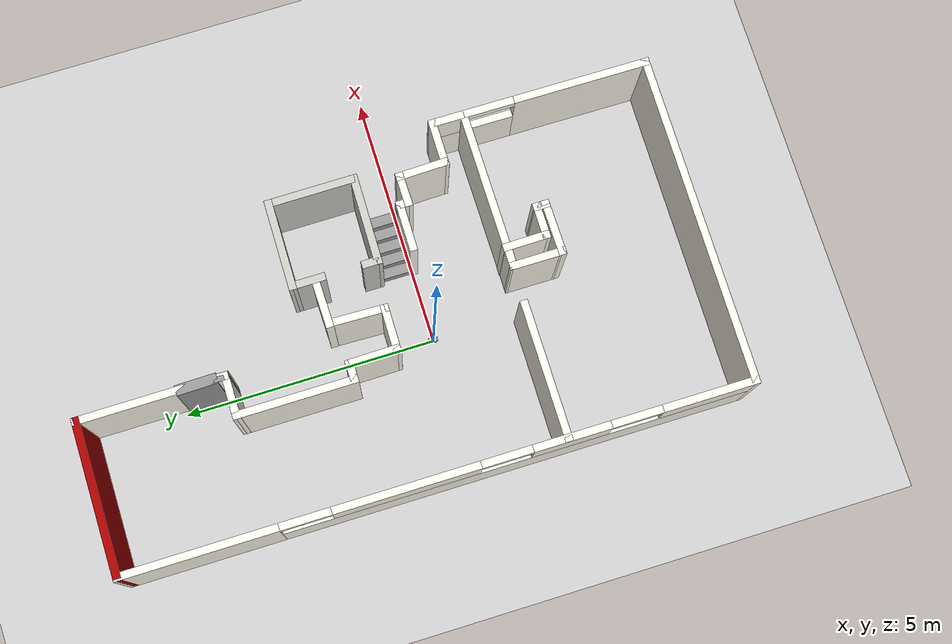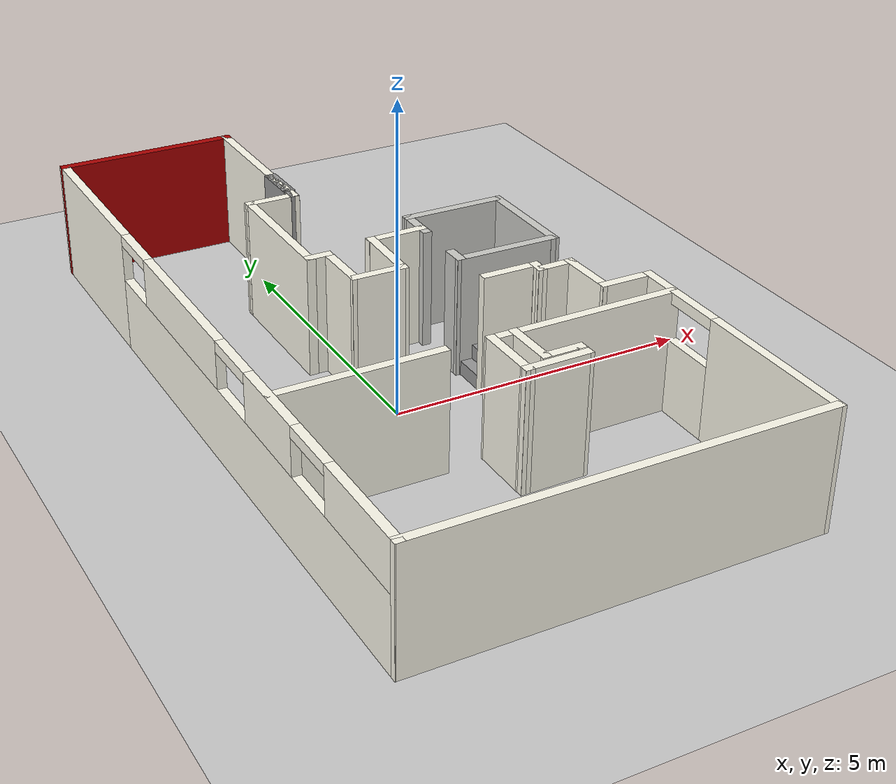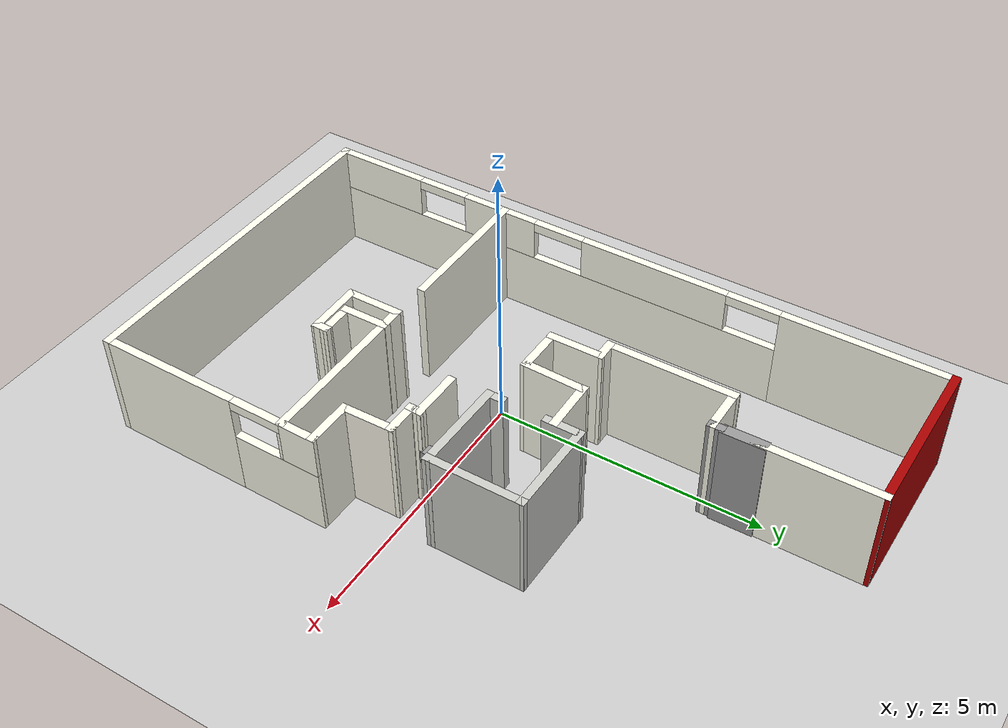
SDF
<sdf version="1.6">
 <world name="default">
  <model name="ground_plane">
   <static>1</static>
   <link name="link">
    <collision name="collision">
     <geometry><plane><normal>0 0 1</normal><size>100 100</size></plane></geometry>
     <surface>
      <contact><collide_bitmask>65535</collide_bitmask></contact>
      <friction><ode><mu>100</mu><mu2>50</mu2></ode></friction>
     </surface>
    </collision>
    <visual name="visual">
     <cast_shadows>0</cast_shadows>
     <geometry><plane><normal>0 0 1</normal><size>100 100</size></plane></geometry>
     <material>
      <script><uri>file://media/materials/scripts/gazebo.material</uri><name>Gazebo/Grey</name></script>
     </material>
    </visual>
   </link>
  </model>
  <model name="Apartment">
   <pose>0.435698 0.75844 0 0 -0 0</pose>
   <link name="Door_0">
    <collision name="Door_0_Collision">
     <geometry><box><size>0.792 0.2 2</size></box></geometry>
     <pose>0 0 1 0 -0 0</pose>
    </collision>
    <visual name="Door_0_Visual">
     <pose>0 0 1 0 -0 0</pose>
     <geometry><box><size>0.792 0.2 2</size></box></geometry>
     <material>
      <script><uri>file://media/materials/scripts/gazebo.material</uri><name>Gazebo/Grey</name></script>
     </material>
    </visual>
    <pose>-0.272982 3.76942 0 0 -0 1.58229</pose>
   </link>
   <link name="Stairs_1">
    <visual name="Stairs_1_Visual_0">
     <pose>1.08577 -0.451347 0.12 0 -0 1.5708</pose>
     <geometry><box><size>0.6 0.2 0.24</size></box></geometry>
     <material>
      <script><uri>file://media/materials/scripts/gazebo.material</uri><name>Gazebo/Grey</name></script>
      <ambient>1 1 1 1</ambient>
     </material>
     <meta><layer>0</layer></meta>
    </visual>
    <collision name="Stairs_1_Collision_0">
     <geometry><box><size>0.6 0.2 0.24</size></box></geometry>
     <pose>1.08577 -0.451347 0.12 0 -0 1.5708</pose>
    </collision>
    <visual name="Stairs_1_Visual_1">
     <pose>1.28577 -0.451347 0.36 0 -0 1.5708</pose>
     <geometry><box><size>0.6 0.2 0.24</size></box></geometry>
     <material>
      <script><uri>file://media/materials/scripts/gazebo.material</uri><name>Gazebo/Grey</name></script>
      <ambient>1 1 1 1</ambient>
     </material>
     <meta><layer>0</layer></meta>
    </visual>
    <collision name="Stairs_1_Collision_1">
     <geometry><box><size>0.6 0.2 0.24</size></box></geometry>
     <pose>1.28577 -0.451347 0.36 0 -0 1.5708</pose>
    </collision>
    <visual name="Stairs_1_Visual_2">
     <pose>1.48577 -0.451347 0.6 0 -0 1.5708</pose>
     <geometry><box><size>0.6 0.2 0.24</size></box></geometry>
     <material>
      <script><uri>file://media/materials/scripts/gazebo.material</uri><name>Gazebo/Grey</name></script>
      <ambient>1 1 1 1</ambient>
     </material>
     <meta><layer>0</layer></meta>
    </visual>
    <collision name="Stairs_1_Collision_2">
     <geometry><box><size>0.6 0.2 0.24</size></box></geometry>
     <pose>1.48577 -0.451347 0.6 0 -0 1.5708</pose>
    </collision>
    <visual name="Stairs_1_Visual_3">
     <pose>1.68577 -0.451347 0.84 0 -0 1.5708</pose>
     <geometry><box><size>0.6 0.2 0.24</size></box></geometry>
     <material>
      <script><uri>file://media/materials/scripts/gazebo.material</uri><name>Gazebo/Grey</name></script>
      <ambient>1 1 1 1</ambient>
     </material>
     <meta><layer>0</layer></meta>
    </visual>
    <collision name="Stairs_1_Collision_3">
     <geometry><box><size>0.6 0.2 0.24</size></box></geometry>
     <pose>1.68577 -0.451347 0.84 0 -0 1.5708</pose>
    </collision>
    <visual name="Stairs_1_Visual_4">
     <pose>1.88577 -0.451347 1.08 0 -0 1.5708</pose>
     <geometry><box><size>0.6 0.2 0.24</size></box></geometry>
     <material>
      <script><uri>file://media/materials/scripts/gazebo.material</uri><name>Gazebo/Grey</name></script>
      <ambient>1 1 1 1</ambient>
     </material>
     <meta><layer>0</layer></meta>
    </visual>
    <collision name="Stairs_1_Collision_4">
     <geometry><box><size>0.6 0.2 0.24</size></box></geometry>
     <pose>1.88577 -0.451347 1.08 0 -0 1.5708</pose>
    </collision>
   </link>
   <link name="Wall_0">
    <collision name="Wall_0_Collision">
     <geometry><box><size>2.97893 0.15 2</size></box></geometry>
     <pose>0 0 1 0 -0 0</pose>
    </collision>
    <visual name="Wall_0_Visual">
     <pose>0 0 1 0 -0 0</pose>
     <geometry><box><size>2.97893 0.15 2</size></box></geometry>
     <material>
      <script><uri>file://media/materials/scripts/gazebo.material</uri><name>Gazebo/Grey</name></script>
      <ambient>1 0.988235 0.929412 1</ambient>
     </material>
     <meta><layer>0</layer></meta>
    </visual>
    <pose>-0.276026 4.64956 0 0 -0 1.57256</pose>
   </link>
   <link name="Wall_1">
    <collision name="Wall_1_Collision">
     <geometry><box><size>3.08816 0.15 2</size></box></geometry>
     <pose>0 0 1 0 -0 0</pose>
    </collision>
    <visual name="Wall_1_Visual">
     <pose>0 0 1 0 -0 0</pose>
     <geometry><box><size>3.08816 0.15 2</size></box></geometry>
     <material>
      <script><uri>file://media/materials/scripts/gazebo.material</uri><name>Gazebo/Grey</name></script>
      <ambient>0.666667 0 0 1</ambient>
     </material>
     <meta><layer>0</layer></meta>
    </visual>
    <pose>-1.74753 6.07156 0 0 -0 3.13649</pose>
   </link>
   <link name="Wall_10">
    <collision name="Wall_10_Collision">
     <geometry><box><size>0.311078 0.15 2</size></box></geometry>
     <pose>0 0 1 0 -0 0</pose>
    </collision>
    <visual name="Wall_10_Visual">
     <pose>0 0 1 0 -0 0</pose>
     <geometry><box><size>0.311078 0.15 2</size></box></geometry>
     <material>
      <script><uri>file://media/materials/scripts/gazebo.material</uri><name>Gazebo/Grey</name></script>
      <ambient>1 0.988235 0.929412 1</ambient>
     </material>
     <meta><layer>0</layer></meta>
    </visual>
    <pose>1.87997 -0.868444 0 0 -0 1.53975</pose>
   </link>
   <link name="Wall_11">
    <collision name="Wall_11_Collision">
     <geometry><box><size>1 0.15 2</size></box></geometry>
     <pose>0 0 1 0 -0 0</pose>
    </collision>
    <visual name="Wall_11_Visual">
     <pose>0 0 1 0 -0 0</pose>
     <geometry><box><size>1 0.15 2</size></box></geometry>
     <material>
      <script><uri>file://media/materials/scripts/gazebo.material</uri><name>Gazebo/Grey</name></script>
      <ambient>1 0.988235 0.929412 1</ambient>
     </material>
     <meta><layer>0</layer></meta>
    </visual>
    <pose>1.45747 -0.784944 0 0 -0 3.13453</pose>
   </link>
   <link name="Wall_13">
    <collision name="Wall_13_Collision">
     <geometry><box><size>2.75 0.15 2</size></box></geometry>
     <pose>0 0 1 0 -0 0</pose>
    </collision>
    <visual name="Wall_13_Visual">
     <pose>0 0 1 0 -0 0</pose>
     <geometry><box><size>2.75 0.15 2</size></box></geometry>
     <material>
      <script><uri>file://media/materials/scripts/gazebo.material</uri><name>Gazebo/Grey</name></script>
      <ambient>1 0.988235 0.929412 1</ambient>
     </material>
     <meta><layer>0</layer></meta>
    </visual>
    <pose>-1.91153 -2.44094 0 0 -0 0</pose>
   </link>
   <link name="Wall_15">
    <collision name="Wall_15_Collision">
     <geometry><box><size>3.21378 0.15 2</size></box></geometry>
     <pose>0 0 1 0 -0 0</pose>
    </collision>
    <visual name="Wall_15_Visual">
     <pose>0 0 1 0 -0 0</pose>
     <geometry><box><size>3.21378 0.15 2</size></box></geometry>
     <material>
      <script><uri>file://media/materials/scripts/gazebo.material</uri><name>Gazebo/Grey</name></script>
      <ambient>1 0.988235 0.929412 1</ambient>
     </material>
     <meta><layer>0</layer></meta>
    </visual>
    <pose>1.67147 -2.45744 0 0 0 -3.138</pose>
   </link>
   <link name="Wall_16">
    <collision name="Wall_16_Collision">
     <geometry><box><size>1.1 0.15 2</size></box></geometry>
     <pose>0 0 1 0 -0 0</pose>
    </collision>
    <visual name="Wall_16_Visual">
     <pose>0 0 1 0 -0 0</pose>
     <geometry><box><size>1.1 0.15 2</size></box></geometry>
     <material>
      <script><uri>file://media/materials/scripts/gazebo.material</uri><name>Gazebo/Grey</name></script>
      <ambient>1 0.988235 0.929412 1</ambient>
     </material>
     <meta><layer>0</layer></meta>
    </visual>
    <pose>0.139474 -2.93794 0 0 0 -1.5708</pose>
   </link>
   <link name="Wall_17">
    <collision name="Wall_17_Collision">
     <geometry><box><size>1.1012 0.15 2</size></box></geometry>
     <pose>0 0 1 0 -0 0</pose>
    </collision>
    <visual name="Wall_17_Visual">
     <pose>0 0 1 0 -0 0</pose>
     <geometry><box><size>1.1012 0.15 2</size></box></geometry>
     <material>
      <script><uri>file://media/materials/scripts/gazebo.material</uri><name>Gazebo/Grey</name></script>
      <ambient>1 0.988235 0.929412 1</ambient>
     </material>
     <meta><layer>0</layer></meta>
    </visual>
    <pose>0.615474 -3.40644 0 0 -0 0.013655</pose>
   </link>
   <link name="Wall_18">
    <collision name="Wall_18_Collision">
     <geometry><box><size>0.32365 0.15 2</size></box></geometry>
     <pose>0 0 1 0 -0 0</pose>
    </collision>
    <visual name="Wall_18_Visual">
     <pose>0 0 1 0 -0 0</pose>
     <geometry><box><size>0.32365 0.15 2</size></box></geometry>
     <material>
      <script><uri>file://media/materials/scripts/gazebo.material</uri><name>Gazebo/Grey</name></script>
      <ambient>1 0.988235 0.929412 1</ambient>
     </material>
     <meta><layer>0</layer></meta>
    </visual>
    <pose>1.09147 -3.31294 0 0 -0 1.5708</pose>
   </link>
   <link name="Wall_19">
    <collision name="Wall_19_Collision">
     <geometry><box><size>0.719 0.15 2</size></box></geometry>
     <pose>0 0 1 0 -0 0</pose>
    </collision>
    <visual name="Wall_19_Visual">
     <pose>0 0 1 0 -0 0</pose>
     <geometry><box><size>0.719 0.15 2</size></box></geometry>
     <material>
      <script><uri>file://media/materials/scripts/gazebo.material</uri><name>Gazebo/Grey</name></script>
      <ambient>1 0.988235 0.929412 1</ambient>
     </material>
     <meta><layer>0</layer></meta>
    </visual>
    <pose>0.806974 -3.22744 0 0 0 -3.13632</pose>
   </link>
   <link name="Wall_2">
    <pose>-3.21653 0.012056 0 0 0 -1.5708</pose>
    <visual name="Wall_2_Visual_0">
     <pose>-4.59104 0 1 0 -0 0</pose>
     <geometry><box><size>3.10147 0.15 2</size></box></geometry>
     <material>
      <script><uri>file://media/materials/scripts/gazebo.material</uri><name>Gazebo/Grey</name></script>
      <ambient>1 0.988235 0.929412 1</ambient>
     </material>
     <meta><layer>0</layer></meta>
    </visual>
    <collision name="Wall_2_Collision_0">
     <geometry><box><size>3.10147 0.15 2</size></box></geometry>
     <pose>-4.59104 0 1 0 -0 0</pose>
    </collision>
    <visual name="Wall_2_Visual_1">
     <pose>1.55073 0 0.6095 0 -0 0</pose>
     <geometry><box><size>9.18207 0.15 1.219</size></box></geometry>
     <material>
      <script><uri>file://media/materials/scripts/gazebo.material</uri><name>Gazebo/Grey</name></script>
      <ambient>1 0.988235 0.929412 1</ambient>
     </material>
     <meta><layer>0</layer></meta>
    </visual>
    <collision name="Wall_2_Collision_1">
     <geometry><box><size>9.18207 0.15 1.219</size></box></geometry>
     <pose>1.55073 0 0.6095 0 -0 0</pose>
    </collision>
    <visual name="Wall_2_Visual_2">
     <pose>-0.630934 0 1.6095 0 -0 0</pose>
     <geometry><box><size>2.83873 0.15 0.781</size></box></geometry>
     <material>
      <script><uri>file://media/materials/scripts/gazebo.material</uri><name>Gazebo/Grey</name></script>
      <ambient>1 0.988235 0.929412 1</ambient>
     </material>
     <meta><layer>0</layer></meta>
    </visual>
    <collision name="Wall_2_Collision_2">
     <geometry><box><size>2.83873 0.15 0.781</size></box></geometry>
     <pose>-0.630934 0 1.6095 0 -0 0</pose>
    </collision>
    <visual name="Wall_2_Visual_3">
     <pose>2.53117 0 1.6095 0 -0 0</pose>
     <geometry><box><size>1.50548 0.15 0.781</size></box></geometry>
     <material>
      <script><uri>file://media/materials/scripts/gazebo.material</uri><name>Gazebo/Grey</name></script>
      <ambient>1 0.988235 0.929412 1</ambient>
     </material>
     <meta><layer>0</layer></meta>
    </visual>
    <collision name="Wall_2_Collision_3">
     <geometry><box><size>1.50548 0.15 0.781</size></box></geometry>
     <pose>2.53117 0 1.6095 0 -0 0</pose>
    </collision>
    <visual name="Wall_2_Visual_4">
     <pose>5.20784 0 1.6095 0 -0 0</pose>
     <geometry><box><size>1.86786 0.15 0.781</size></box></geometry>
     <material>
      <script><uri>file://media/materials/scripts/gazebo.material</uri><name>Gazebo/Grey</name></script>
      <ambient>1 0.988235 0.929412 1</ambient>
     </material>
     <meta><layer>0</layer></meta>
    </visual>
    <collision name="Wall_2_Collision_4">
     <geometry><box><size>1.86786 0.15 0.781</size></box></geometry>
     <pose>5.20784 0 1.6095 0 -0 0</pose>
    </collision>
    <visual name="Wall_2_Visual_5">
     <pose>-2.5453 0 1.9095 0 -0 0</pose>
     <geometry><box><size>0.99 0.15 0.181</size></box></geometry>
     <material>
      <script><uri>file://media/materials/scripts/gazebo.material</uri><name>Gazebo/Grey</name></script>
      <ambient>1 0.988235 0.929412 1</ambient>
     </material>
     <meta><layer>0</layer></meta>
    </visual>
    <collision name="Wall_2_Collision_5">
     <geometry><box><size>0.99 0.15 0.181</size></box></geometry>
     <pose>-2.5453 0 1.9095 0 -0 0</pose>
    </collision>
    <visual name="Wall_2_Visual_6">
     <pose>1.28343 0 1.9095 0 -0 0</pose>
     <geometry><box><size>0.99 0.15 0.181</size></box></geometry>
     <material>
      <script><uri>file://media/materials/scripts/gazebo.material</uri><name>Gazebo/Grey</name></script>
      <ambient>1 0.988235 0.929412 1</ambient>
     </material>
     <meta><layer>0</layer></meta>
    </visual>
    <collision name="Wall_2_Collision_6">
     <geometry><box><size>0.99 0.15 0.181</size></box></geometry>
     <pose>1.28343 0 1.9095 0 -0 0</pose>
    </collision>
    <visual name="Wall_2_Visual_7">
     <pose>3.77891 0 1.9095 0 -0 0</pose>
     <geometry><box><size>0.99 0.15 0.181</size></box></geometry>
     <material>
      <script><uri>file://media/materials/scripts/gazebo.material</uri><name>Gazebo/Grey</name></script>
      <ambient>1 0.988235 0.929412 1</ambient>
     </material>
     <meta><layer>0</layer></meta>
    </visual>
    <collision name="Wall_2_Collision_7">
     <geometry><box><size>0.99 0.15 0.181</size></box></geometry>
     <pose>3.77891 0 1.9095 0 -0 0</pose>
    </collision>
   </link>
   <link name="Wall_20">
    <collision name="Wall_20_Collision">
     <geometry><box><size>0.925382 0.15 2</size></box></geometry>
     <pose>0 0 1 0 -0 0</pose>
    </collision>
    <visual name="Wall_20_Visual">
     <pose>0 0 1 0 -0 0</pose>
     <geometry><box><size>0.925382 0.15 2</size></box></geometry>
     <material>
      <script><uri>file://media/materials/scripts/gazebo.material</uri><name>Gazebo/Grey</name></script>
      <ambient>1 0.988235 0.929412 1</ambient>
     </material>
     <meta><layer>0</layer></meta>
    </visual>
    <pose>0.519474 -2.84094 0 0 -0 1.57853</pose>
   </link>
   <link name="Wall_23">
    <collision name="Wall_23_Collision">
     <geometry><box><size>1.79124 0.15 2</size></box></geometry>
     <pose>0 0 1 0 -0 0</pose>
    </collision>
    <visual name="Wall_23_Visual">
     <pose>0 0 1 0 -0 0</pose>
     <geometry><box><size>1.79124 0.15 2</size></box></geometry>
     <material>
      <script><uri>file://media/materials/scripts/gazebo.material</uri><name>Gazebo/CeilingTiled</name></script>
      <ambient>1 1 1 1</ambient>
     </material>
     <meta><layer>0</layer></meta>
    </visual>
    <pose>1.79897 -0.097944 0 0 0 -0.015843</pose>
   </link>
   <link name="Wall_24">
    <collision name="Wall_24_Collision">
     <geometry><box><size>1.8195 0.15 2</size></box></geometry>
     <pose>0 0 1 0 -0 0</pose>
    </collision>
    <visual name="Wall_24_Visual">
     <pose>0 0 1 0 -0 0</pose>
     <geometry><box><size>1.8195 0.15 2</size></box></geometry>
     <material>
      <script><uri>file://media/materials/scripts/gazebo.material</uri><name>Gazebo/CeilingTiled</name></script>
      <ambient>1 1 1 1</ambient>
     </material>
     <meta><layer>0</layer></meta>
    </visual>
    <pose>2.61947 0.723556 0 0 -0 1.5708</pose>
   </link>
   <link name="Wall_25">
    <collision name="Wall_25_Collision">
     <geometry><box><size>1.79103 0.15 2</size></box></geometry>
     <pose>0 0 1 0 -0 0</pose>
    </collision>
    <visual name="Wall_25_Visual">
     <pose>0 0 1 0 -0 0</pose>
     <geometry><box><size>1.79103 0.15 2</size></box></geometry>
     <material>
      <script><uri>file://media/materials/scripts/gazebo.material</uri><name>Gazebo/CeilingTiled</name></script>
      <ambient>1 1 1 1</ambient>
     </material>
     <meta><layer>0</layer></meta>
    </visual>
    <pose>1.79897 1.56706 0 0 -0 3.13062</pose>
   </link>
   <link name="Wall_28">
    <collision name="Wall_28_Collision">
     <geometry><box><size>1.02916 0.15 2</size></box></geometry>
     <pose>0 0 1 0 -0 0</pose>
    </collision>
    <visual name="Wall_28_Visual">
     <pose>0 0 1 0 -0 0</pose>
     <geometry><box><size>1.02916 0.15 2</size></box></geometry>
     <material>
      <script><uri>file://media/materials/scripts/gazebo.material</uri><name>Gazebo/Grey</name></script>
      <ambient>1 0.988235 0.929412 1</ambient>
     </material>
     <meta><layer>0</layer></meta>
    </visual>
    <pose>0.535929 1.12956 0 0 0 -3.12908</pose>
   </link>
   <link name="Wall_30">
    <collision name="Wall_30_Collision">
     <geometry><box><size>1.21772 0.15 2</size></box></geometry>
     <pose>0 0 1 0 -0 0</pose>
    </collision>
    <visual name="Wall_30_Visual">
     <pose>0 0 1 0 -0 0</pose>
     <geometry><box><size>1.21772 0.15 2</size></box></geometry>
     <material>
      <script><uri>file://media/materials/scripts/gazebo.material</uri><name>Gazebo/Grey</name></script>
      <ambient>1 0.988235 0.929412 1</ambient>
     </material>
     <meta><layer>0</layer></meta>
    </visual>
    <pose>0.089183 0.590208 0 0 0 -1.5979</pose>
   </link>
   <link name="Wall_31">
    <collision name="Wall_31_Collision">
     <geometry><box><size>0.941296 0.15 2</size></box></geometry>
     <pose>0 0 1 0 -0 0</pose>
    </collision>
    <visual name="Wall_31_Visual">
     <pose>0 0 1 0 -0 0</pose>
     <geometry><box><size>0.941296 0.15 2</size></box></geometry>
     <material>
      <script><uri>file://media/materials/scripts/gazebo.material</uri><name>Gazebo/Grey</name></script>
      <ambient>1 0.988235 0.929412 1</ambient>
     </material>
     <meta><layer>0</layer></meta>
    </visual>
    <pose>-0.320908 0.061208 0 0 -0 3.12934</pose>
   </link>
   <link name="Wall_32">
    <collision name="Wall_32_Collision">
     <geometry><box><size>1.06103 0.15 2</size></box></geometry>
     <pose>0 0 1 0 -0 0</pose>
    </collision>
    <visual name="Wall_32_Visual">
     <pose>0 0 1 0 -0 0</pose>
     <geometry><box><size>1.06103 0.15 2</size></box></geometry>
     <material>
      <script><uri>file://media/materials/scripts/gazebo.material</uri><name>Gazebo/Grey</name></script>
      <ambient>1 0.988235 0.929412 1</ambient>
     </material>
     <meta><layer>0</layer></meta>
    </visual>
    <pose>-0.721026 0.521556 0 0 -0 1.58068</pose>
   </link>
   <link name="Wall_33">
    <collision name="Wall_33_Collision">
     <geometry><box><size>0.45987 0.15 2</size></box></geometry>
     <pose>0 0 1 0 -0 0</pose>
    </collision>
    <visual name="Wall_33_Visual">
     <pose>0 0 1 0 -0 0</pose>
     <geometry><box><size>0.45987 0.15 2</size></box></geometry>
     <material>
      <script><uri>file://media/materials/scripts/gazebo.material</uri><name>Gazebo/Grey</name></script>
      <ambient>1 0.988235 0.929412 1</ambient>
     </material>
     <meta><layer>0</layer></meta>
    </visual>
    <pose>-0.880526 0.977056 0 0 -0 3.14159</pose>
   </link>
   <link name="Wall_35">
    <collision name="Wall_35_Collision">
     <geometry><box><size>2.40185 0.15 2</size></box></geometry>
     <pose>0 0 1 0 -0 0</pose>
    </collision>
    <visual name="Wall_35_Visual">
     <pose>0 0 1 0 -0 0</pose>
     <geometry><box><size>2.40185 0.15 2</size></box></geometry>
     <material>
      <script><uri>file://media/materials/scripts/gazebo.material</uri><name>Gazebo/Grey</name></script>
      <ambient>1 0.988235 0.929412 1</ambient>
     </material>
     <meta><layer>0</layer></meta>
    </visual>
    <pose>-1.03553 2.10256 0 0 -0 1.5708</pose>
   </link>
   <link name="Wall_36">
    <collision name="Wall_36_Collision">
     <geometry><box><size>0.915215 0.15 2</size></box></geometry>
     <pose>0 0 1 0 -0 0</pose>
    </collision>
    <visual name="Wall_36_Visual">
     <pose>0 0 1 0 -0 0</pose>
     <geometry><box><size>0.915215 0.15 2</size></box></geometry>
     <material>
      <script><uri>file://media/materials/scripts/gazebo.material</uri><name>Gazebo/Grey</name></script>
      <ambient>1 0.988235 0.929412 1</ambient>
     </material>
     <meta><layer>0</layer></meta>
    </visual>
    <pose>-0.653026 3.22506 0 0 0 -0.007843</pose>
   </link>
   <link name="Wall_37">
    <collision name="Wall_37_Collision">
     <geometry><box><size>0.301905 0.15 2</size></box></geometry>
     <pose>0 0 1 0 -0 0</pose>
    </collision>
    <visual name="Wall_37_Visual">
     <pose>0 0 1 0 -0 0</pose>
     <geometry><box><size>0.301905 0.15 2</size></box></geometry>
     <material>
      <script><uri>file://media/materials/scripts/gazebo.material</uri><name>Gazebo/Grey</name></script>
      <ambient>1 1 1 1</ambient>
     </material>
     <meta><layer>0</layer></meta>
    </visual>
    <pose>-0.270526 3.29806 0 0 -0 1.5708</pose>
   </link>
   <link name="Wall_4">
    <collision name="Wall_4_Collision">
     <geometry><box><size>6.55531 0.15 2</size></box></geometry>
     <pose>0 0 1 0 -0 0</pose>
    </collision>
    <visual name="Wall_4_Visual">
     <pose>0 0 1 0 -0 0</pose>
     <geometry><box><size>6.55531 0.15 2</size></box></geometry>
     <material>
      <script><uri>file://media/materials/scripts/gazebo.material</uri><name>Gazebo/Grey</name></script>
      <ambient>1 0.988235 0.929412 1</ambient>
     </material>
     <meta><layer>0</layer></meta>
    </visual>
    <pose>-0.014026 -6.06694 0 0 0 -0.003747</pose>
   </link>
   <link name="Wall_42">
    <pose>0.978474 0.745556 0 0 0 -1.5708</pose>
    <visual name="Wall_42_Visual_0">
     <pose>-0.544709 0 1 0 -0 0</pose>
     <geometry><box><size>0.721287 0.15 2</size></box></geometry>
     <material>
      <script><uri>file://media/materials/scripts/gazebo.material</uri><name>Gazebo/CeilingTiled</name></script>
      <ambient>1 1 1 1</ambient>
     </material>
     <meta><layer>0</layer></meta>
    </visual>
    <collision name="Wall_42_Collision_0">
     <geometry><box><size>0.721287 0.15 2</size></box></geometry>
     <pose>-0.544709 0 1 0 -0 0</pose>
    </collision>
    <visual name="Wall_42_Visual_1">
     <pose>0.710643 0 1 0 -0 0</pose>
     <geometry><box><size>0.389419 0.15 2</size></box></geometry>
     <material>
      <script><uri>file://media/materials/scripts/gazebo.material</uri><name>Gazebo/CeilingTiled</name></script>
      <ambient>1 1 1 1</ambient>
     </material>
     <meta><layer>0</layer></meta>
    </visual>
    <collision name="Wall_42_Collision_1">
     <geometry><box><size>0.389419 0.15 2</size></box></geometry>
     <pose>0.710643 0 1 0 -0 0</pose>
    </collision>
   </link>
   <link name="Wall_5">
    <pose>3.20247 -3.96044 0 0 -0 1.56419</pose>
    <visual name="Wall_5_Visual_0">
     <pose>-0.841786 0 1 0 -0 0</pose>
     <geometry><box><size>2.70352 0.15 2</size></box></geometry>
     <material>
      <script><uri>file://media/materials/scripts/gazebo.material</uri><name>Gazebo/Grey</name></script>
      <ambient>1 0.988235 0.929412 1</ambient>
     </material>
     <meta><layer>0</layer></meta>
    </visual>
    <collision name="Wall_5_Collision_0">
     <geometry><box><size>2.70352 0.15 2</size></box></geometry>
     <pose>-0.841786 0 1 0 -0 0</pose>
    </collision>
    <visual name="Wall_5_Visual_1">
     <pose>1.35176 0 0.6095 0 -0 0</pose>
     <geometry><box><size>1.68357 0.15 1.219</size></box></geometry>
     <material>
      <script><uri>file://media/materials/scripts/gazebo.material</uri><name>Gazebo/Grey</name></script>
      <ambient>1 0.988235 0.929412 1</ambient>
     </material>
     <meta><layer>0</layer></meta>
    </visual>
    <collision name="Wall_5_Collision_1">
     <geometry><box><size>1.68357 0.15 1.219</size></box></geometry>
     <pose>1.35176 0 0.6095 0 -0 0</pose>
    </collision>
    <visual name="Wall_5_Visual_2">
     <pose>1.84676 0 1.6095 0 -0 0</pose>
     <geometry><box><size>0.693573 0.15 0.781</size></box></geometry>
     <material>
      <script><uri>file://media/materials/scripts/gazebo.material</uri><name>Gazebo/Grey</name></script>
      <ambient>1 0.988235 0.929412 1</ambient>
     </material>
     <meta><layer>0</layer></meta>
    </visual>
    <collision name="Wall_5_Collision_2">
     <geometry><box><size>0.693573 0.15 0.781</size></box></geometry>
     <pose>1.84676 0 1.6095 0 -0 0</pose>
    </collision>
    <visual name="Wall_5_Visual_3">
     <pose>1.00497 0 1.9095 0 -0 0</pose>
     <geometry><box><size>0.99 0.15 0.181</size></box></geometry>
     <material>
      <script><uri>file://media/materials/scripts/gazebo.material</uri><name>Gazebo/Grey</name></script>
      <ambient>1 0.988235 0.929412 1</ambient>
     </material>
     <meta><layer>0</layer></meta>
    </visual>
    <collision name="Wall_5_Collision_3">
     <geometry><box><size>0.99 0.15 0.181</size></box></geometry>
     <pose>1.00497 0 1.9095 0 -0 0</pose>
    </collision>
   </link>
   <link name="Wall_7">
    <collision name="Wall_7_Collision">
     <geometry><box><size>0.940612 0.15 2</size></box></geometry>
     <pose>0 0 1 0 -0 0</pose>
    </collision>
    <visual name="Wall_7_Visual">
     <pose>0 0 1 0 -0 0</pose>
     <geometry><box><size>0.940612 0.15 2</size></box></geometry>
     <material>
      <script><uri>file://media/materials/scripts/gazebo.material</uri><name>Gazebo/Grey</name></script>
      <ambient>1 0.988235 0.929412 1</ambient>
     </material>
     <meta><layer>0</layer></meta>
    </visual>
    <pose>2.82097 -1.83894 0 0 -0 3.13401</pose>
   </link>
   <link name="Wall_8">
    <collision name="Wall_8_Collision">
     <geometry><box><size>1.04134 0.15 2</size></box></geometry>
     <pose>0 0 1 0 -0 0</pose>
    </collision>
    <visual name="Wall_8_Visual">
     <pose>0 0 1 0 -0 0</pose>
     <geometry><box><size>1.04134 0.15 2</size></box></geometry>
     <material>
      <script><uri>file://media/materials/scripts/gazebo.material</uri><name>Gazebo/Grey</name></script>
      <ambient>1 0.988235 0.929412 1</ambient>
     </material>
     <meta><layer>0</layer></meta>
    </visual>
    <pose>2.41547 -1.39044 0 0 -0 1.59324</pose>
   </link>
   <link name="Wall_9">
    <collision name="Wall_9_Collision">
     <geometry><box><size>0.678216 0.15 2</size></box></geometry>
     <pose>0 0 1 0 -0 0</pose>
    </collision>
    <visual name="Wall_9_Visual">
     <pose>0 0 1 0 -0 0</pose>
     <geometry><box><size>0.678216 0.15 2</size></box></geometry>
     <material>
      <script><uri>file://media/materials/scripts/gazebo.material</uri><name>Gazebo/Grey</name></script>
      <ambient>1 0.988235 0.929412 1</ambient>
     </material>
     <meta><layer>0</layer></meta>
    </visual>
    <pose>2.14147 -0.946944 0 0 0 -3.13402</pose>
   </link>
   <static>1</static>
  </model>
  <model name="Scout">
   <link name="link_5">
    <pose>0.000124 0.000467 0.012036 0 1.5707 0</pose>
    <inertial>
     <mass>1</mass>
     <inertia>
      <ixx>0.166667</ixx>
      <ixy>0</ixy>
      <ixz>0</ixz>
      <iyy>0.166667</iyy>
      <iyz>0</iyz>
      <izz>0.166667</izz>
     </inertia>
    </inertial>
    <visual name="visual">
     <geometry><box><size>0.07 0.1 0.11</size></box></geometry>
     <material>
      <lighting>1</lighting>
      <script><uri>file://media/materials/scripts/gazebo.material</uri><name>Gazebo/Grey</name></script>
      <shader type="pixel"><normal_map>__default__</normal_map></shader>
      <ambient>0.3 0.3 0.3 1</ambient>
      <diffuse>0.7 0.7 0.7 1</diffuse>
      <specular>0.01 0.01 0.01 1</specular>
      <emissive>0 0 0 1</emissive>
     </material>
    </visual>
    <collision name="collision">
     <geometry><box><size>0.07 0.1 0.11</size></box></geometry>
     <surface>
      <friction>
       <ode><mu>1</mu><mu2>1</mu2><fdir1>0 0 0</fdir1><slip1>0</slip1><slip2>0</slip2></ode>
       <torsional>
        <coefficient>1</coefficient>
        <patch_radius>0</patch_radius>
        <surface_radius>0</surface_radius>
        <use_patch_radius>1</use_patch_radius>
        <ode><slip>0</slip></ode>
       </torsional>
      </friction>
      <bounce><restitution_coefficient>0</restitution_coefficient><threshold>1e+06</threshold></bounce>
      <contact>
       <collide_without_contact>0</collide_without_contact>
       <collide_without_contact_bitmask>1</collide_without_contact_bitmask>
       <collide_bitmask>1</collide_bitmask>
       <ode>
        <soft_cfm>0</soft_cfm>
        <soft_erp>0.2</soft_erp>
        <kp>1e+13</kp>
        <kd>1</kd>
        <max_vel>0.01</max_vel>
        <min_depth>0</min_depth>
       </ode>
       <bullet>
        <split_impulse>1</split_impulse>
        <split_impulse_penetration_threshold>-0.01</split_impulse_penetration_threshold>
        <soft_cfm>0</soft_cfm>
        <soft_erp>0.2</soft_erp>
        <kp>1e+13</kp>
        <kd>1</kd>
       </bullet>
      </contact>
     </surface>
    </collision>
   </link>
   <link name="link_6">
    <pose>0.030124 -0.082817 -0.002561 1.5707 -0 0</pose>
    <inertial>
     <mass>1</mass>
     <inertia><ixx>0.145833</ixx><ixy>0</ixy><ixz>0</ixz><iyy>0.145833</iyy><iyz>0</iyz><izz>0.125</izz></inertia>
    </inertial>
    <visual name="visual">
     <geometry><cylinder><radius>0.0254</radius><length>0.01</length></cylinder></geometry>
     <material>
      <lighting>1</lighting>
      <script><uri>file://media/materials/scripts/gazebo.material</uri><name>Gazebo/Grey</name></script>
      <shader type="pixel"><normal_map>__default__</normal_map></shader>
      <ambient>0.3 0.3 0.3 1</ambient>
      <diffuse>0.7 0.7 0.7 1</diffuse>
      <specular>0.01 0.01 0.01 1</specular>
      <emissive>0 0 0 1</emissive>
     </material>
    </visual>
    <collision name="collision">
     <geometry><cylinder><radius>0.0254</radius><length>0.01</length></cylinder></geometry>
     <surface>
      <friction>
       <ode><mu>1</mu><mu2>1</mu2><fdir1>0 0 0</fdir1><slip1>0</slip1><slip2>0</slip2></ode>
       <torsional>
        <coefficient>1</coefficient>
        <patch_radius>0</patch_radius>
        <surface_radius>0</surface_radius>
        <use_patch_radius>1</use_patch_radius>
        <ode><slip>0</slip></ode>
       </torsional>
      </friction>
      <bounce><restitution_coefficient>0</restitution_coefficient><threshold>1e+06</threshold></bounce>
      <contact>
       <collide_without_contact>0</collide_without_contact>
       <collide_without_contact_bitmask>1</collide_without_contact_bitmask>
       <collide_bitmask>1</collide_bitmask>
       <ode>
        <soft_cfm>0</soft_cfm>
        <soft_erp>0.2</soft_erp>
        <kp>1e+13</kp>
        <kd>1</kd>
        <max_vel>0.01</max_vel>
        <min_depth>0</min_depth>
       </ode>
       <bullet>
        <split_impulse>1</split_impulse>
        <split_impulse_penetration_threshold>-0.01</split_impulse_penetration_threshold>
        <soft_cfm>0</soft_cfm>
        <soft_erp>0.2</soft_erp>
        <kp>1e+13</kp>
        <kd>1</kd>
       </bullet>
      </contact>
     </surface>
    </collision>
   </link>
   <link name="link_6_clone">
    <pose>-0.029876 -0.079536 -0.002561 1.5707 -0 0</pose>
    <inertial>
     <mass>1</mass>
     <inertia><ixx>0.145833</ixx><ixy>0</ixy><ixz>0</ixz><iyy>0.145833</iyy><iyz>0</iyz><izz>0.125</izz></inertia>
    </inertial>
    <visual name="visual">
     <geometry><cylinder><radius>0.0254</radius><length>0.01</length></cylinder></geometry>
     <material>
      <lighting>1</lighting>
      <script><uri>file://media/materials/scripts/gazebo.material</uri><name>Gazebo/Grey</name></script>
      <shader type="pixel"><normal_map>__default__</normal_map></shader>
      <ambient>0.3 0.3 0.3 1</ambient>
      <diffuse>0.7 0.7 0.7 1</diffuse>
      <specular>0.01 0.01 0.01 1</specular>
      <emissive>0 0 0 1</emissive>
     </material>
    </visual>
    <collision name="collision">
     <geometry><cylinder><radius>0.0254</radius><length>0.01</length></cylinder></geometry>
     <surface>
      <friction>
       <ode><mu>1</mu><mu2>1</mu2><fdir1>0 0 0</fdir1><slip1>0</slip1><slip2>0</slip2></ode>
       <torsional>
        <coefficient>1</coefficient>
        <patch_radius>0</patch_radius>
        <surface_radius>0</surface_radius>
        <use_patch_radius>1</use_patch_radius>
        <ode><slip>0</slip></ode>
       </torsional>
      </friction>
      <bounce><restitution_coefficient>0</restitution_coefficient><threshold>1e+06</threshold></bounce>
      <contact>
       <collide_without_contact>0</collide_without_contact>
       <collide_without_contact_bitmask>1</collide_without_contact_bitmask>
       <collide_bitmask>1</collide_bitmask>
       <ode>
        <soft_cfm>0</soft_cfm>
        <soft_erp>0.2</soft_erp>
        <kp>1e+13</kp>
        <kd>1</kd>
        <max_vel>0.01</max_vel>
        <min_depth>0</min_depth>
       </ode>
       <bullet>
        <split_impulse>1</split_impulse>
        <split_impulse_penetration_threshold>-0.01</split_impulse_penetration_threshold>
        <soft_cfm>0</soft_cfm>
        <soft_erp>0.2</soft_erp>
        <kp>1e+13</kp>
        <kd>1</kd>
       </bullet>
      </contact>
     </surface>
    </collision>
   </link>
   <link name="link_6_clone_0">
    <pose>0.02967 0.080483 -0.002563 1.5707 -0 0</pose>
    <inertial>
     <mass>1</mass>
     <inertia><ixx>0.145833</ixx><ixy>0</ixy><ixz>0</ixz><iyy>0.145833</iyy><iyz>0</iyz><izz>0.125</izz></inertia>
    </inertial>
    <visual name="visual">
     <geometry><cylinder><radius>0.0254</radius><length>0.01</length></cylinder></geometry>
     <material>
      <lighting>1</lighting>
      <script><uri>file://media/materials/scripts/gazebo.material</uri><name>Gazebo/Grey</name></script>
      <shader type="pixel"><normal_map>__default__</normal_map></shader>
      <ambient>0.3 0.3 0.3 1</ambient>
      <diffuse>0.7 0.7 0.7 1</diffuse>
      <specular>0.01 0.01 0.01 1</specular>
      <emissive>0 0 0 1</emissive>
     </material>
    </visual>
    <collision name="collision">
     <geometry><cylinder><radius>0.0254</radius><length>0.01</length></cylinder></geometry>
     <surface>
      <friction>
       <ode><mu>1</mu><mu2>1</mu2><fdir1>0 0 0</fdir1><slip1>0</slip1><slip2>0</slip2></ode>
       <torsional>
        <coefficient>1</coefficient>
        <patch_radius>0</patch_radius>
        <surface_radius>0</surface_radius>
        <use_patch_radius>1</use_patch_radius>
        <ode><slip>0</slip></ode>
       </torsional>
      </friction>
      <bounce><restitution_coefficient>0</restitution_coefficient><threshold>1e+06</threshold></bounce>
      <contact>
       <collide_without_contact>0</collide_without_contact>
       <collide_without_contact_bitmask>1</collide_without_contact_bitmask>
       <collide_bitmask>1</collide_bitmask>
       <ode>
        <soft_cfm>0</soft_cfm>
        <soft_erp>0.2</soft_erp>
        <kp>1e+13</kp>
        <kd>1</kd>
        <max_vel>0.01</max_vel>
        <min_depth>0</min_depth>
       </ode>
       <bullet>
        <split_impulse>1</split_impulse>
        <split_impulse_penetration_threshold>-0.01</split_impulse_penetration_threshold>
        <soft_cfm>0</soft_cfm>
        <soft_erp>0.2</soft_erp>
        <kp>1e+13</kp>
        <kd>1</kd>
       </bullet>
      </contact>
     </surface>
    </collision>
   </link>
   <link name="link_6_clone_1">
    <pose>-0.029876 0.080469 -0.002563 1.5707 -0 0</pose>
    <inertial>
     <mass>1</mass>
     <inertia><ixx>0.145833</ixx><ixy>0</ixy><ixz>0</ixz><iyy>0.145833</iyy><iyz>0</iyz><izz>0.125</izz></inertia>
    </inertial>
    <visual name="visual">
     <geometry><cylinder><radius>0.0254</radius><length>0.01</length></cylinder></geometry>
     <material>
      <lighting>1</lighting>
      <script><uri>file://media/materials/scripts/gazebo.material</uri><name>Gazebo/Grey</name></script>
      <shader type="pixel"><normal_map>__default__</normal_map></shader>
      <ambient>0.3 0.3 0.3 1</ambient>
      <diffuse>0.7 0.7 0.7 1</diffuse>
      <specular>0.01 0.01 0.01 1</specular>
      <emissive>0 0 0 1</emissive>
     </material>
    </visual>
    <collision name="collision">
     <geometry><cylinder><radius>0.0254</radius><length>0.01</length></cylinder></geometry>
     <surface>
      <friction>
       <ode><mu>1</mu><mu2>1</mu2><fdir1>0 0 0</fdir1><slip1>0</slip1><slip2>0</slip2></ode>
       <torsional>
        <coefficient>1</coefficient>
        <patch_radius>0</patch_radius>
        <surface_radius>0</surface_radius>
        <use_patch_radius>1</use_patch_radius>
        <ode><slip>0</slip></ode>
       </torsional>
      </friction>
      <bounce><restitution_coefficient>0</restitution_coefficient><threshold>1e+06</threshold></bounce>
      <contact>
       <collide_without_contact>0</collide_without_contact>
       <collide_without_contact_bitmask>1</collide_without_contact_bitmask>
       <collide_bitmask>1</collide_bitmask>
       <ode>
        <soft_cfm>0</soft_cfm>
        <soft_erp>0.2</soft_erp>
        <kp>1e+13</kp>
        <kd>1</kd>
        <max_vel>0.01</max_vel>
        <min_depth>0</min_depth>
       </ode>
       <bullet>
        <split_impulse>1</split_impulse>
        <split_impulse_penetration_threshold>-0.01</split_impulse_penetration_threshold>
        <soft_cfm>0</soft_cfm>
        <soft_erp>0.2</soft_erp>
        <kp>1e+13</kp>
        <kd>1</kd>
       </bullet>
      </contact>
     </surface>
    </collision>
   </link>
   <link name="link_7">
    <pose>0.029712 0.000467 -0.000894 1.5707 -0 0</pose>
    <inertial>
     <mass>1</mass>
     <inertia><ixx>0.145833</ixx><ixy>0</ixy><ixz>0</ixz><iyy>0.145833</iyy><iyz>0</iyz><izz>0.125</izz></inertia>
    </inertial>
    <visual name="visual">
     <geometry><cylinder><radius>0.001</radius><length>0.15</length></cylinder></geometry>
     <material>
      <lighting>1</lighting>
      <script><uri>file://media/materials/scripts/gazebo.material</uri><name>Gazebo/Grey</name></script>
      <shader type="pixel"><normal_map>__default__</normal_map></shader>
      <ambient>0.3 0.3 0.3 1</ambient>
      <diffuse>0.7 0.7 0.7 1</diffuse>
      <specular>0.01 0.01 0.01 1</specular>
      <emissive>0 0 0 1</emissive>
     </material>
    </visual>
    <collision name="collision">
     <geometry><cylinder><radius>0.001</radius><length>0.15</length></cylinder></geometry>
     <surface>
      <friction>
       <ode><mu>1</mu><mu2>1</mu2><fdir1>0 0 0</fdir1><slip1>0</slip1><slip2>0</slip2></ode>
       <torsional>
        <coefficient>1</coefficient>
        <patch_radius>0</patch_radius>
        <surface_radius>0</surface_radius>
        <use_patch_radius>1</use_patch_radius>
        <ode><slip>0</slip></ode>
       </torsional>
      </friction>
      <bounce><restitution_coefficient>0</restitution_coefficient><threshold>1e+06</threshold></bounce>
      <contact>
       <collide_without_contact>0</collide_without_contact>
       <collide_without_contact_bitmask>1</collide_without_contact_bitmask>
       <collide_bitmask>1</collide_bitmask>
       <ode>
        <soft_cfm>0</soft_cfm>
        <soft_erp>0.2</soft_erp>
        <kp>1e+13</kp>
        <kd>1</kd>
        <max_vel>0.01</max_vel>
        <min_depth>0</min_depth>
       </ode>
       <bullet>
        <split_impulse>1</split_impulse>
        <split_impulse_penetration_threshold>-0.01</split_impulse_penetration_threshold>
        <soft_cfm>0</soft_cfm>
        <soft_erp>0.2</soft_erp>
        <kp>1e+13</kp>
        <kd>1</kd>
       </bullet>
      </contact>
     </surface>
    </collision>
   </link>
   <link name="link_7_clone">
    <pose>-0.029876 0.000467 -0.000894 1.5707 -0 0</pose>
    <inertial>
     <mass>1</mass>
     <inertia><ixx>0.145833</ixx><ixy>0</ixy><ixz>0</ixz><iyy>0.145833</iyy><iyz>0</iyz><izz>0.125</izz></inertia>
    </inertial>
    <visual name="visual">
     <geometry><cylinder><radius>0.001</radius><length>0.15</length></cylinder></geometry>
     <material>
      <lighting>1</lighting>
      <script><uri>file://media/materials/scripts/gazebo.material</uri><name>Gazebo/Grey</name></script>
      <shader type="pixel"><normal_map>__default__</normal_map></shader>
      <ambient>0.3 0.3 0.3 1</ambient>
      <diffuse>0.7 0.7 0.7 1</diffuse>
      <specular>0.01 0.01 0.01 1</specular>
      <emissive>0 0 0 1</emissive>
     </material>
    </visual>
    <collision name="collision">
     <geometry><cylinder><radius>0.001</radius><length>0.15</length></cylinder></geometry>
     <surface>
      <friction>
       <ode><mu>1</mu><mu2>1</mu2><fdir1>0 0 0</fdir1><slip1>0</slip1><slip2>0</slip2></ode>
       <torsional>
        <coefficient>1</coefficient>
        <patch_radius>0</patch_radius>
        <surface_radius>0</surface_radius>
        <use_patch_radius>1</use_patch_radius>
        <ode><slip>0</slip></ode>
       </torsional>
      </friction>
      <bounce><restitution_coefficient>0</restitution_coefficient><threshold>1e+06</threshold></bounce>
      <contact>
       <collide_without_contact>0</collide_without_contact>
       <collide_without_contact_bitmask>1</collide_without_contact_bitmask>
       <collide_bitmask>1</collide_bitmask>
       <ode>
        <soft_cfm>0</soft_cfm>
        <soft_erp>0.2</soft_erp>
        <kp>1e+13</kp>
        <kd>1</kd>
        <max_vel>0.01</max_vel>
        <min_depth>0</min_depth>
       </ode>
       <bullet>
        <split_impulse>1</split_impulse>
        <split_impulse_penetration_threshold>-0.01</split_impulse_penetration_threshold>
        <soft_cfm>0</soft_cfm>
        <soft_erp>0.2</soft_erp>
        <kp>1e+13</kp>
        <kd>1</kd>
       </bullet>
      </contact>
     </surface>
    </collision>
   </link>
   <joint name="link_5_JOINT_13" type="fixed">
    <parent>link_5</parent>
    <child>link_7</child>
    <physics>
     <ode><limit><cfm>0</cfm><erp>0.2</erp></limit><suspension><cfm>0</cfm><erp>0.2</erp></suspension></ode>
    </physics>
   </joint>
   <joint name="link_5_JOINT_14" type="fixed">
    <parent>link_5</parent>
    <child>link_7_clone</child>
    <physics>
     <ode><limit><cfm>0</cfm><erp>0.2</erp></limit><suspension><cfm>0</cfm><erp>0.2</erp></suspension></ode>
    </physics>
   </joint>
   <joint name="link_7_JOINT_12" type="revolute">
    <parent>link_7</parent>
    <child>link_6</child>
    <axis>
     <xyz>1 0 0</xyz>
     <use_parent_model_frame>0</use_parent_model_frame>
     <limit>
      <lower>-1.79769e+308</lower>
      <upper>1.79769e+308</upper>
      <effort>-1</effort>
      <velocity>-1</velocity>
     </limit>
     <dynamics>
      <spring_reference>0</spring_reference>
      <spring_stiffness>0</spring_stiffness>
      <damping>0</damping>
     </dynamics>
    </axis>
    <physics>
     <ode><limit><cfm>0</cfm><erp>0.2</erp></limit><suspension><cfm>0</cfm><erp>0.2</erp></suspension></ode>
    </physics>
   </joint>
   <joint name="link_7_JOINT_8" type="revolute">
    <parent>link_7</parent>
    <child>link_6_clone_0</child>
    <axis>
     <xyz>1 0 0</xyz>
     <use_parent_model_frame>0</use_parent_model_frame>
     <limit>
      <lower>-1.79769e+308</lower>
      <upper>1.79769e+308</upper>
      <effort>-1</effort>
      <velocity>-1</velocity>
     </limit>
     <dynamics>
      <spring_reference>0</spring_reference>
      <spring_stiffness>0</spring_stiffness>
      <damping>0</damping>
      <friction>0</friction>
     </dynamics>
    </axis>
    <physics>
     <ode><limit><cfm>0</cfm><erp>0.2</erp></limit><suspension><cfm>0</cfm><erp>0.2</erp></suspension></ode>
    </physics>
   </joint>
   <joint name="link_7_clone_JOINT_10" type="revolute">
    <parent>link_7_clone</parent>
    <child>link_6_clone_1</child>
    <axis>
     <xyz>1 0 0</xyz>
     <use_parent_model_frame>0</use_parent_model_frame>
     <limit>
      <lower>-1.79769e+308</lower>
      <upper>1.79769e+308</upper>
      <effort>-1</effort>
      <velocity>-1</velocity>
     </limit>
     <dynamics>
      <spring_reference>0</spring_reference>
      <spring_stiffness>0</spring_stiffness>
      <damping>0</damping>
      <friction>0</friction>
     </dynamics>
    </axis>
    <physics>
     <ode><limit><cfm>0</cfm><erp>0.2</erp></limit><suspension><cfm>0</cfm><erp>0.2</erp></suspension></ode>
    </physics>
   </joint>
   <joint name="link_7_clone_JOINT_11" type="revolute">
    <parent>link_7_clone</parent>
    <child>link_6_clone</child>
    <axis>
     <xyz>1 0 0</xyz>
     <use_parent_model_frame>0</use_parent_model_frame>
     <limit>
      <lower>-1.79769e+308</lower>
      <upper>1.79769e+308</upper>
      <effort>-1</effort>
      <velocity>-1</velocity>
     </limit>
     <dynamics>
      <spring_reference>0</spring_reference>
      <spring_stiffness>0</spring_stiffness>
      <damping>0</damping>
     </dynamics>
    </axis>
    <physics>
     <ode><limit><cfm>0</cfm><erp>0.2</erp></limit><suspension><cfm>0</cfm><erp>0.2</erp></suspension></ode>
    </physics>
   </joint>
   <static>0</static>
   <pose>0.018947 0.005436 0.027963 1.4e-05 2.7e-05 -0.000381</pose>
  </model>
 </world>
</sdf>
